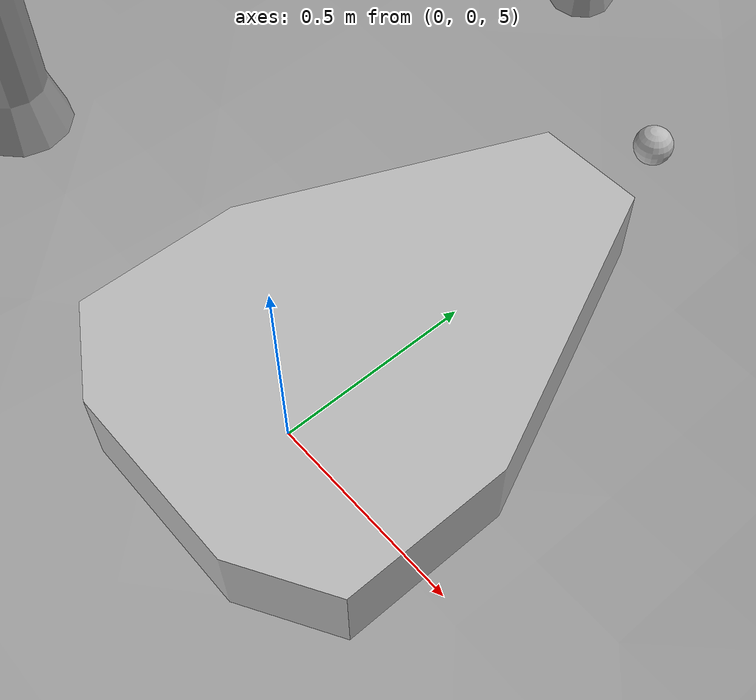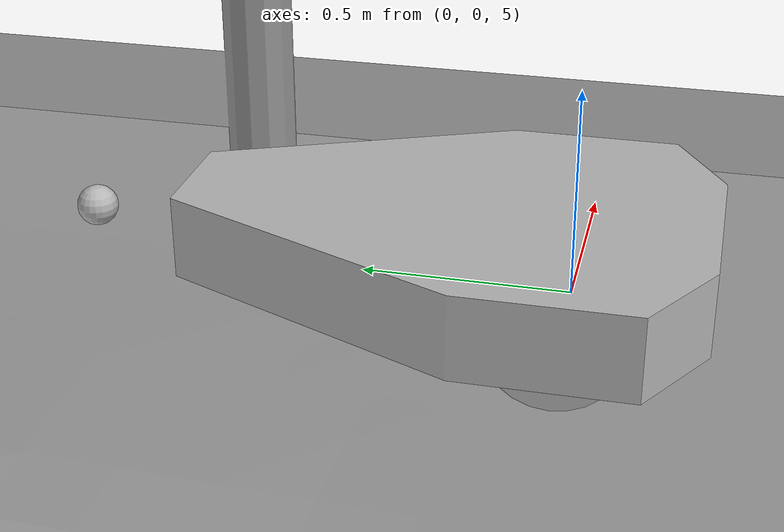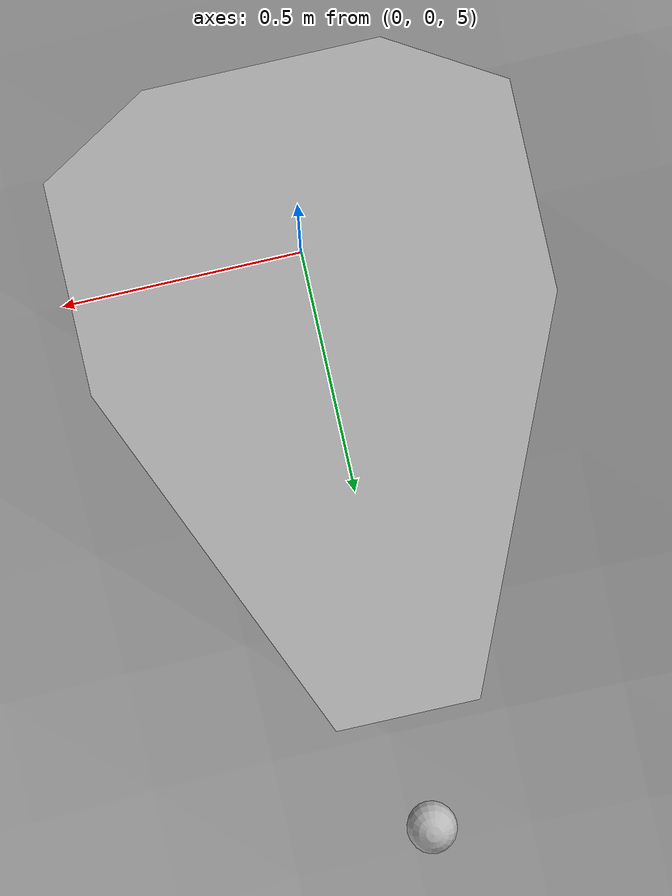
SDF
<sdf version="1.4">
    <world name="default">
      <include>
        <uri>model://sun</uri>
      </include>
      <include>
        <uri>model://gazebo</uri>
        <name>kratos</name>
        <pose>0.0 0 5 0 0 0</pose>
      </include>

      <model name='ground_plane'>
        <static>1</static>
        <link name='link'>
          <collision name='collision'>
            <geometry>
              <mesh>
                <uri>model://gazebo/course_1.DAE</uri>
              </mesh>
            </geometry>
            <surface>
              <friction>
                <ode>
                  <mu>100</mu>
                  <mu2>50</mu2>
                </ode>
              </friction>
              <contact>
                <ode/>
              </contact>
              <bounce/>
            </surface>
            <max_contacts>10</max_contacts>
          </collision>
          <visual name='visual'>
            <cast_shadows>0</cast_shadows>
            <geometry>
              <mesh>
                <uri>model://gazebo/course_1.DAE</uri>
              </mesh>
            </geometry>
            <material>
              <script>
                <uri>file://media/materials/scripts/gazebo.material</uri>
                <name>Gazebo/Grey</name>
              </script>
            </material>
          </visual>
          <velocity_decay>
            <linear>0</linear>
            <angular>0</angular>
          </velocity_decay>
          <self_collide>0</self_collide>
          <kinematic>0</kinematic>
          <gravity>1</gravity>
        </link>
      </model>
    </world>
  </sdf>

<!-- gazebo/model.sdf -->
<sdf version='1.4'>
  <model name="Kratos">

   <static>false</static>
   <link name='chassis'>
    <pose>0 -0.33 0 0 0 0</pose>

    <inertial>
      <pose>0 0.5 0.1 0 -0 0</pose>
      <mass>10</mass>
    </inertial>

    <collision name='collision'>
      <geometry>
        <mesh>
          <scale>0.001 0.001 0.001</scale> <!-- the DAE is in millimeters. Gazebo is in meters. -->
          <uri>model://gazebo/Prometheus.dae</uri>
        </mesh>
      </geometry>
    </collision>

    <visual name='visual'>
      <geometry>
        <mesh>
          <scale>0.001 0.001 0.001</scale>
          <uri>model://gazebo/Prometheus.dae</uri>
        </mesh>
      </geometry>
    </visual>

    <collision name='caster_collision'>
      <pose>0 1.05 -0.057 0 0 0</pose>
      <geometry>
        <sphere>
          <radius>.05</radius>
        </sphere>
      </geometry>

      <surface>
        <friction>
          <ode>
            <mu>0</mu>
            <mu2>0</mu2>
            <slip1>1.0</slip1>
            <slip2>1.0</slip2>
          </ode>
        </friction>
      </surface>
    </collision>

    <visual name='caster_visual'>
      <pose>0 1.05 -0.057 0 0 0</pose>
      <geometry>
        <sphere>
          <radius>.05</radius>
        </sphere>
      </geometry>
    </visual>

    <visual name='camra_visual'>
      <pose>0 1.5 0.1 0 0 0</pose>
      <geometry>
        <sphere>
          <radius>.05</radius>
        </sphere>
      </geometry>
    </visual>

    <sensor type="depth" name="xtion_sensor">
      <pose>0 1 0.1 0 0 1.57</pose>
      <always_on>true</always_on>
      <update_rate>20.0</update_rate>
      <topic>tteesstt</topic>
      <camera>
        <horizontal_fov>1.047</horizontal_fov>
        <image>
          <width>640</width>
          <height>480</height>
          <format>R8G8B8</format>
        </image>
        <clip>
          <near>0.05</near>
          <far>5</far>
        </clip>
      </camera>
      <visualize>true</visualize>

    </sensor>

  </link>

  <link name="left_wheel">
    <pose>0.31 0.0 0.05 0 1.5707 0</pose>
    <collision name="collision">
      <geometry>
        <cylinder>
          <radius>.157</radius>
          <length>.065</length>
        </cylinder>
      </geometry>

      <surface>
        <friction>
          <ode>
            <mu>100.0</mu>
            <mu2>100.0</mu2>
            <slip1>1.0</slip1>
            <slip2>1.0</slip2>
          </ode>
        </friction>
      </surface>

    </collision>
    <visual name="visual">
      <geometry>
        <cylinder>
          <radius>.157</radius>
          <length>.065</length>
        </cylinder>
      </geometry>
    </visual>
  </link>

  <link name="right_wheel">
    <pose>-0.31 0.0 0.05 0 1.5707 0</pose>
    <collision name="collision">
      <geometry>
        <cylinder>
          <radius>.157</radius>
          <length>.065</length>
        </cylinder>
      </geometry>

      <surface>
        <friction>
          <ode>
            <mu>100.0</mu>
            <mu2>100.0</mu2>
            <slip1>1.0</slip1>
            <slip2>1.0</slip2>
          </ode>
        </friction>
      </surface>

    </collision>
    <visual name="visual">
      <geometry>
        <cylinder>
          <radius>.157</radius>
          <length>.065</length>
        </cylinder>
      </geometry>
    </visual>
  </link>

  <joint type="revolute" name="left_wheel_hinge">
    <pose>0 0 -0.03 0 0 0</pose>
    <child>left_wheel</child>
    <parent>chassis</parent>
    <axis>
      <xyz>1 0 0</xyz>
      <dynamics>
        <friction>20.0</friction>
        <damping>20.0</damping>
      </dynamics>
    </axis>
  </joint>

  <joint type="revolute" name="right_wheel_hinge">
    <pose>0 0 0.03 0 0 0</pose>
    <child>right_wheel</child>
    <parent>chassis</parent>
    <axis>
      <xyz>1 0 0</xyz>
      <dynamics>
        <friction>20.0</friction>
        <damping>20.0</damping>
      </dynamics>
    </axis>
  </joint>

  <plugin name="kratos" filename="libkratos.so"/>
</model>
</sdf>
